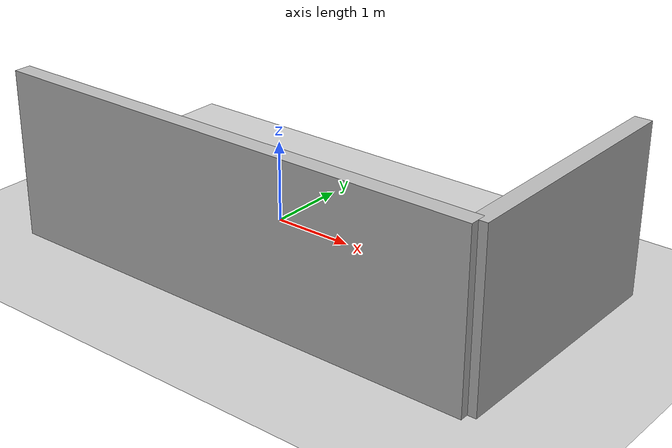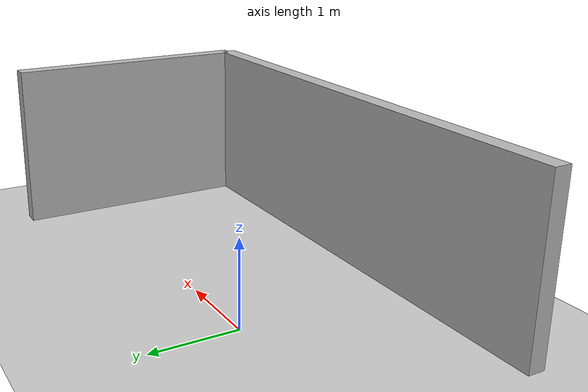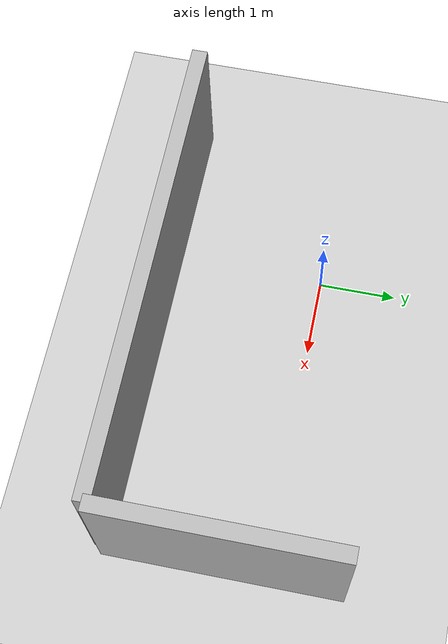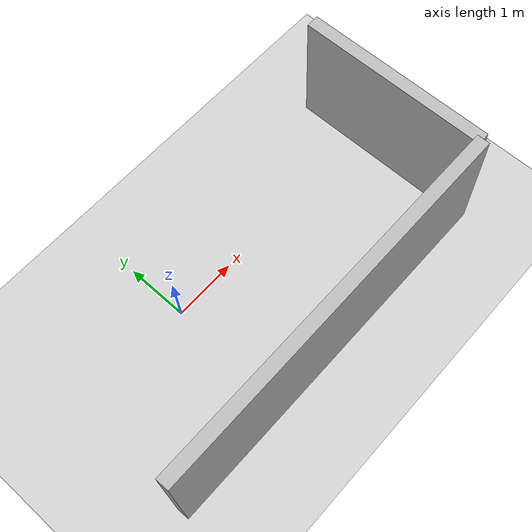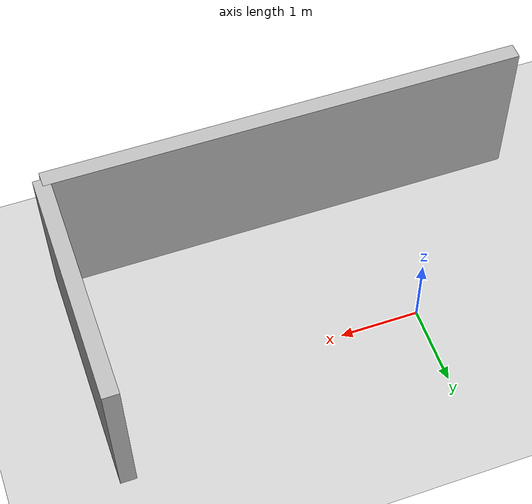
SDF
<?xml version="1.0" ?>
<sdf version="1.5">
  <world name="default">
    <!-- global lights / ground -->
    <include>
      <uri>model://sun</uri>
    </include>

    <include>
      <uri>model://ground_plane</uri>
    </include>

    <!-- Walls: two static box walls simulating two walls of lab. -->
    <!-- South wall -->
    <model name="wall_south">
      <static>true</static>
      <!-- x y z roll pitch yaw -->
      <pose>1 -2 1 0 0 0</pose>
      <link name="link">
        <collision name="collision">
          <!-- length depth height -->
          <geometry><box><size>6 0.2 2</size></box></geometry>
        </collision>
        <visual name="visual">
          <geometry><box><size>6 0.2 2</size></box></geometry>
        </visual>
      </link>
    </model>

    <!-- East wall -->
    <model name="wall_east">
      <static>true</static>
      <!-- x y z roll pitch yaw -->
      <pose>4 -0.5 1 0 0 0</pose>
      <link name="link">
        <collision name="collision">
          <!-- length depth height -->
          <geometry><box><size>0.2 3 2</size></box></geometry>
        </collision>
        <visual name="visual">
          <geometry><box><size>0.2 3 2</size></box></geometry>
        </visual>
      </link>
    </model>
  </world>
</sdf>
